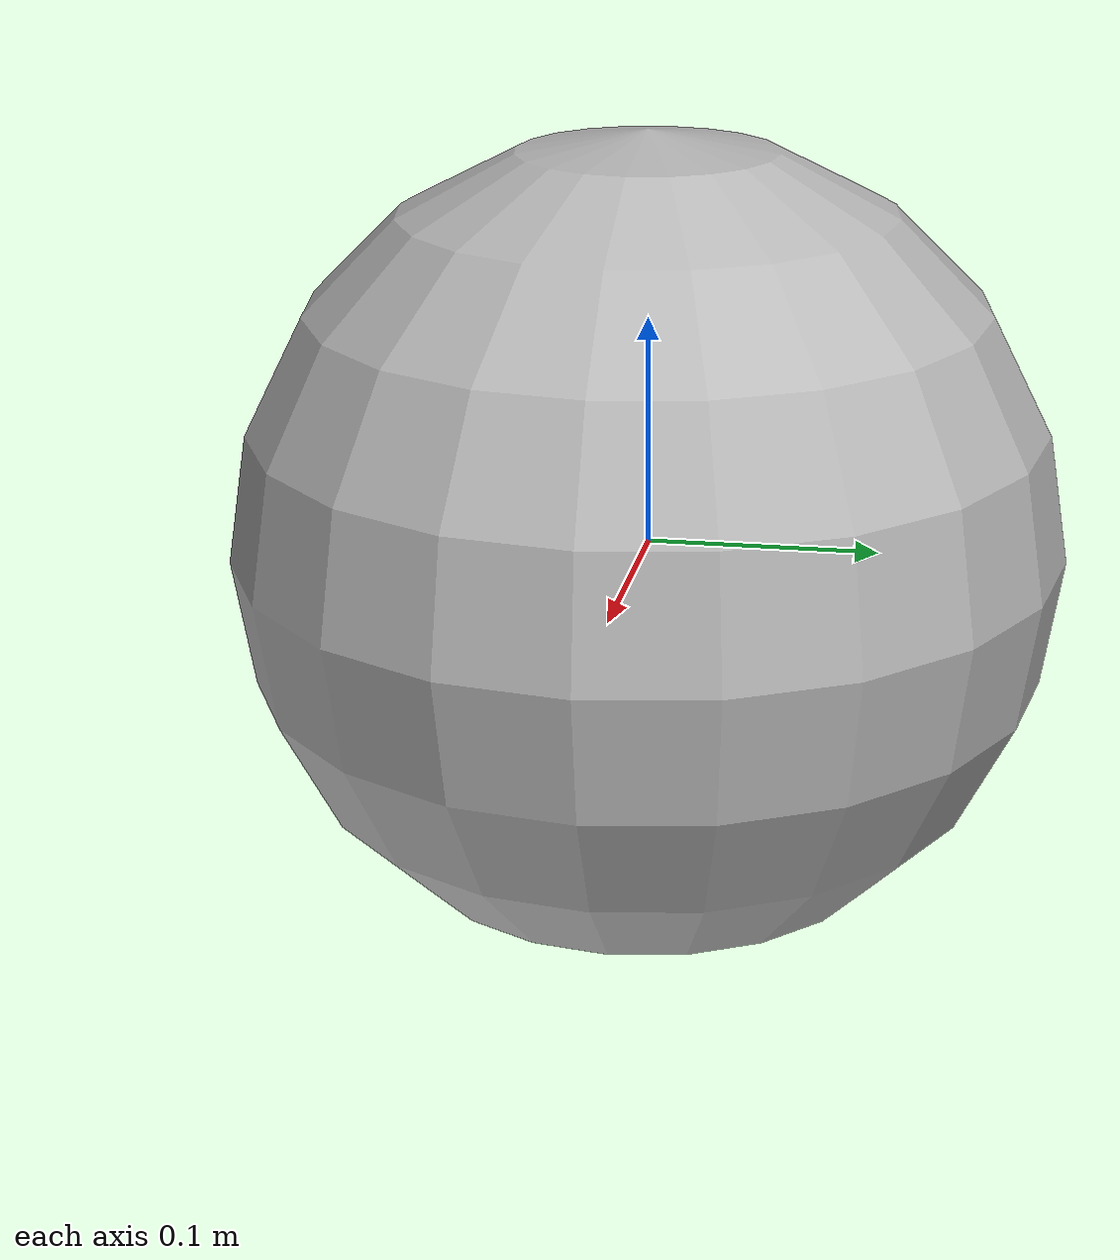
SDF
<?xml version="1.0" ?>
<sdf version="1.8">
  <model name="uav">
    <pose>0 0 0 0 0 0</pose>
    <static>false</static>
    <self_collide>false</self_collide>

    <link name="base_link">
      <pose>0 0 0 0 0 0</pose>
      <inertial><mass>1.2</mass><inertia><ixx>0.02</ixx><iyy>0.02</iyy><izz>0.04</izz></inertia></inertial>
      <collision name="collision"><geometry><sphere><radius>0.18</radius></sphere></geometry></collision>
      <visual name="visual"><geometry><sphere><radius>0.18</radius></sphere></geometry></visual>
      <sensor name="lidar" type="gpu_lidar">
        <pose>0 0 0 0 0 0</pose>
        <topic>lidar</topic>
        <update_rate>15</update_rate>
        <ray><scan><horizontal><samples>180</samples><resolution>1</resolution><min_angle>-3.14159</min_angle><max_angle>3.14159</max_angle></horizontal></scan><range><min>0.2</min><max>15.0</max><resolution>0.01</resolution></range></ray>
        <always_on>1</always_on>
        <visualize>false</visualize>
      </sensor>
    </link>
    <link name="rotor_0"><pose>0.22 0.22 0.05 0 0 0</pose><inertial><mass>0.03</mass><inertia><ixx>1e-5</ixx><iyy>1e-5</iyy><izz>2e-5</izz></inertia></inertial></link>
    <link name="rotor_1"><pose>-0.22 0.22 0.05 0 0 0</pose><inertial><mass>0.03</mass><inertia><ixx>1e-5</ixx><iyy>1e-5</iyy><izz>2e-5</izz></inertia></inertial></link>
    <link name="rotor_2"><pose>-0.22 -0.22 0.05 0 0 0</pose><inertial><mass>0.03</mass><inertia><ixx>1e-5</ixx><iyy>1e-5</iyy><izz>2e-5</izz></inertia></inertial></link>
    <link name="rotor_3"><pose>0.22 -0.22 0.05 0 0 0</pose><inertial><mass>0.03</mass><inertia><ixx>1e-5</ixx><iyy>1e-5</iyy><izz>2e-5</izz></inertia></inertial></link>
    <joint name="rotor_0_joint" type="revolute"><parent>base_link</parent><child>rotor_0</child><axis><xyz>0 0 1</xyz><limit><lower>-1e16</lower><upper>1e16</upper></limit></axis></joint>
    <joint name="rotor_1_joint" type="revolute"><parent>base_link</parent><child>rotor_1</child><axis><xyz>0 0 1</xyz><limit><lower>-1e16</lower><upper>1e16</upper></limit></axis></joint>
    <joint name="rotor_2_joint" type="revolute"><parent>base_link</parent><child>rotor_2</child><axis><xyz>0 0 1</xyz><limit><lower>-1e16</lower><upper>1e16</upper></limit></axis></joint>
    <joint name="rotor_3_joint" type="revolute"><parent>base_link</parent><child>rotor_3</child><axis><xyz>0 0 1</xyz><limit><lower>-1e16</lower><upper>1e16</upper></limit></axis></joint>
  </model>
</sdf>
